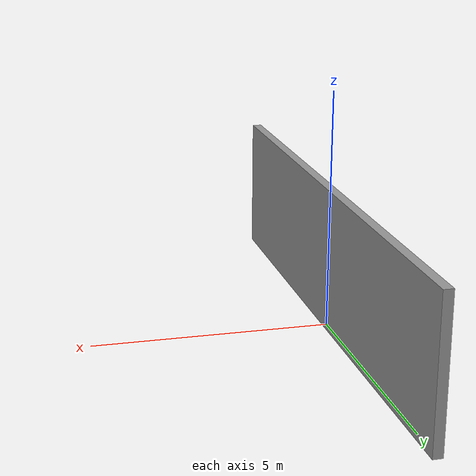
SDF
<?xml version='1.0'?>
<sdf version='1.7'>
  <model name='wall_04'>
    <pose>0 0 0 0 -0 0</pose>
    <link name='Wall_12'>
      <collision name='Wall_12_Collision'>
        <geometry>
          <box>
            <size>11.7555 0.2 3</size>
          </box>
        </geometry>
        <pose>0 0 1.5 0 -0 0</pose>
      </collision>
      <visual name='Wall_12_Visual'>
        <cast_shadows>false</cast_shadows>
        <pose>0 0 1.5 0 -0 0</pose>
        <geometry>
          <box>
            <size>11.7555 0.2 3</size>
          </box>
        </geometry>
        <material>
          <script>
            <uri>file://media/materials/scripts/gazebo.material</uri>
            <name>Gazebo/Grey</name>
          </script>
          <ambient>1 1 1 1</ambient>
        </material>
        <meta>
          <layer>0</layer>
        </meta>
      </visual>
      <pose>0 0 0 0 -0 -1.5708</pose>
    </link>

    <static>1</static>
  </model>
</sdf>
